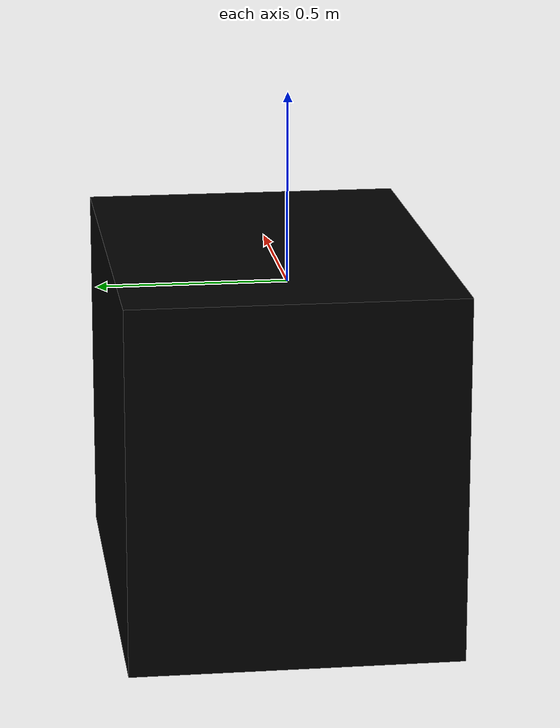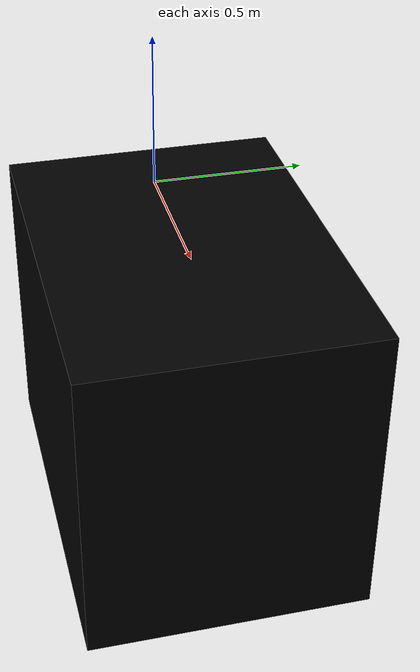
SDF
<?xml version="1.0" ?>
<sdf version="1.8">
  <model name='isaac_demotable_cuboid'>
    <static>true</static>
    <link name="link">
      <pose>0 0 0.0 0 0 0</pose>
      <inertial>
        <mass>1.0</mass>
        <inertia>
          <ixx>0.27</ixx>
          <ixy>0</ixy>
          <ixz>0</ixz>
          <iyy>0.27</iyy>
          <iyz>0</iyz>
          <izz>0.27</izz>
        </inertia>
      </inertial>
      <enable_wind>false</enable_wind>

      <collision name="collision">
        <pose>.4 0 -.5 0 0 0</pose>
        <geometry>
          <box>
            <size>1.27 .9 1</size>
          </box>
        </geometry>
        <surface>
          <contact>
            <collide_without_contact>true</collide_without_contact>
          </contact>
          <friction>
            <ode>
              <mu>0.6</mu>
              <mu2>0.6</mu2>
            </ode>
          </friction>
        </surface>
      </collision>

      <visual name="visual">
        <pose>.4 0 -.4999 0 0 0</pose> <!-- actually z -.5, but differ a bit to avoid z fighting with ground plane in default pose-->
        <geometry>
          <box>
            <size>1.27 .9 1</size>
          </box>
        </geometry>
        <material>
          <ambient>0 0 0 1</ambient>
          <diffuse>0 0 0 1</diffuse>
          <specular>0.1 0.1 0.1 1</specular>
          <emissive>0 0 0 1</emissive>
        </material>
      </visual>

    </link>
  </model>
</sdf>
